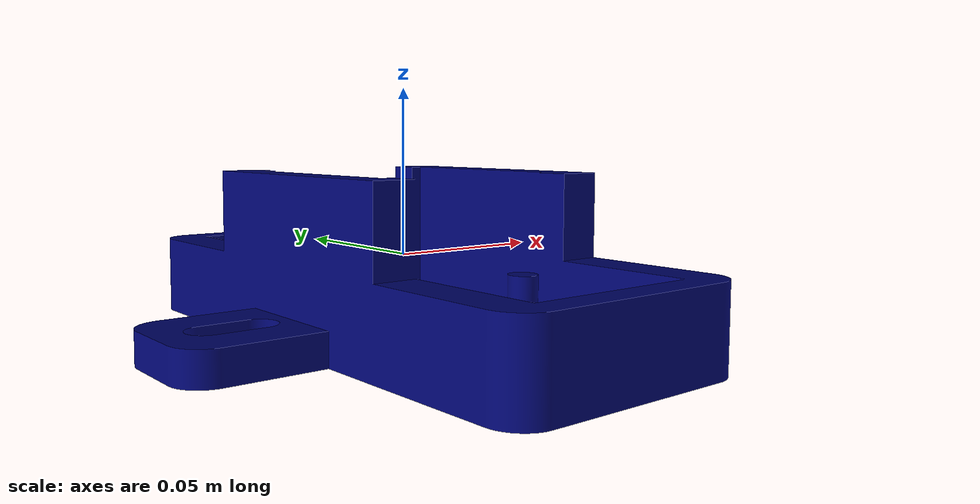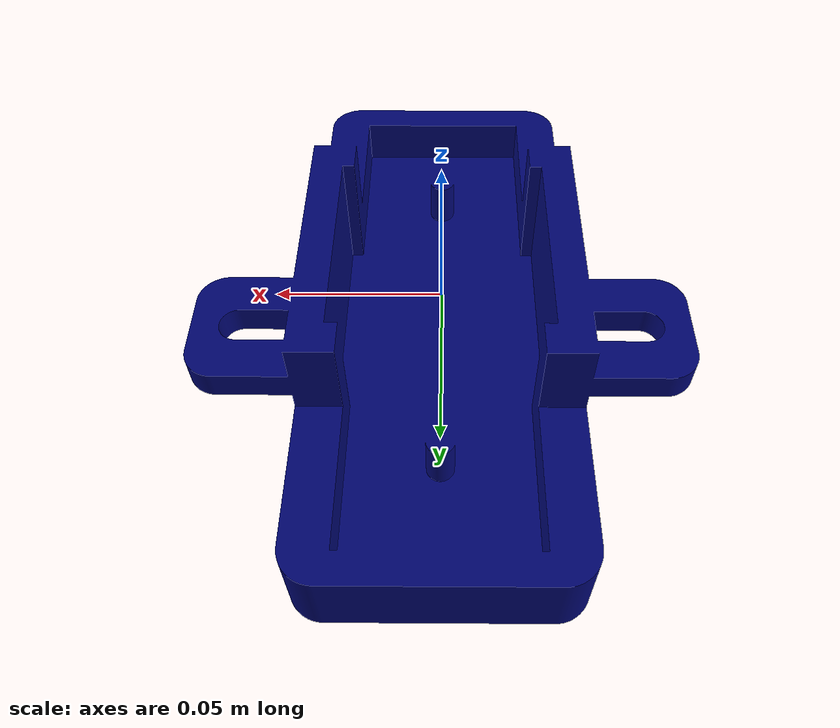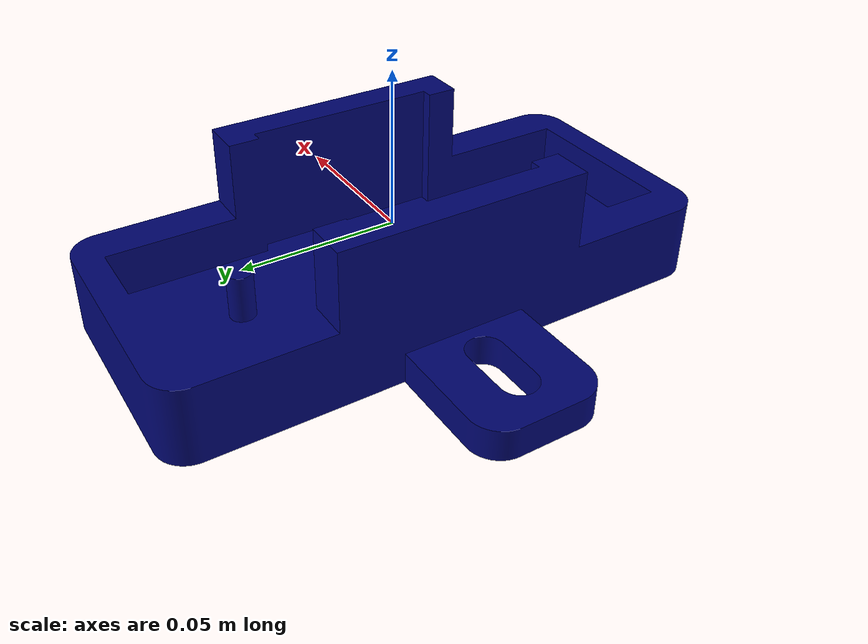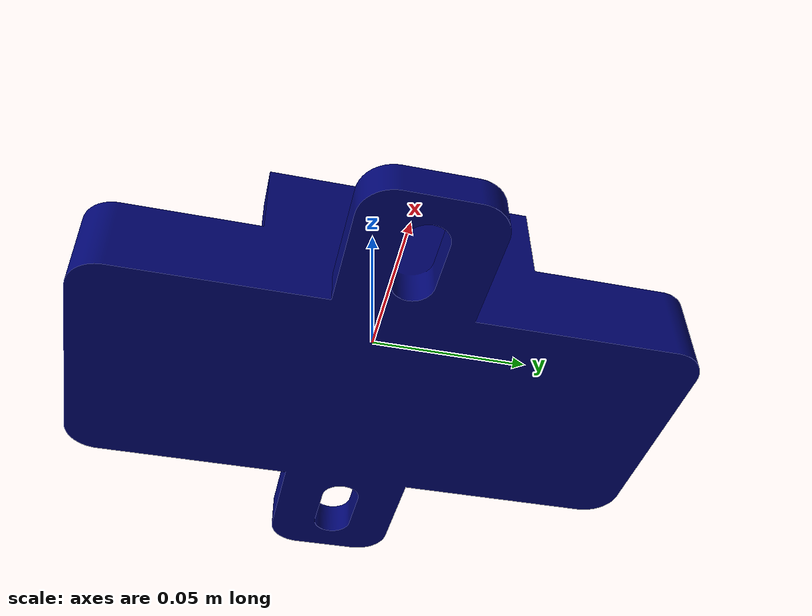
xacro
<?xml version="1.0"?>
<robot name="connector_plate" xmlns:xacro="http://ros.org/wiki/xacro">

  <!-- connector_plate center of obj/stl -->
  <link name="connector_plate">
        <visual>
        <geometry>
          <mesh filename="file:///objects/connector_plate/meshes/connector_plate.stl">
            <scale>1 1 1</scale>
          </mesh>
        </geometry>
        <material name="blue">
          <color rgba="0.0 0.02 0.45 1.0"/>
        </material>
      </visual>
  </link>

  <!-- connector_plate grasping_frame -->
  <link name="connector_plate_grasping_frame">
    </link>

  <joint name="connector_plate_to_connector_plate_grasping_frame" type="fixed">
    <origin xyz="0.0 0.0 0.01" rpy="0 0 1.5708"/>
    <parent link="connector_plate"/>
    <child link="connector_plate_grasping_frame" />
  </joint>

  <!-- connector_plate base -->
  <link name="connector_plate_base">
    </link>

  <joint name="connector_plate_to_connector_plate_base" type="fixed">
    <origin xyz="0.0 0.0 -0.025" rpy="0 0 0"/>
    <parent link="connector_plate"/>
    <child link="connector_plate_base" />
  </joint>

  <!-- connector_plate assembly -->
  <link name="connector_plate_assembly_t_connector">
    </link>

  <joint name="connector_plate_to_connector_plate_assembly_t_connector" type="fixed">
    <origin xyz="0.0 0.0 -0.015" rpy="0 0 0"/>
    <parent link="connector_plate"/>
    <child link="connector_plate_assembly_t_connector" />
  </joint>

  <!-- connector_plate to t_connector -->
  <link name="t_connector">
    </link>

  <joint name="connector_plate_assembly_t_connector_to_t_connector" type="fixed">
    <origin xyz="0.0 0.0 0.0264" rpy="0 0 0"/> <!-- height from t_connector.urdf.xacro -->
    <parent link="connector_plate_assembly_t_connector"/>
    <child link="t_connector" />
  </joint>

</robot>
